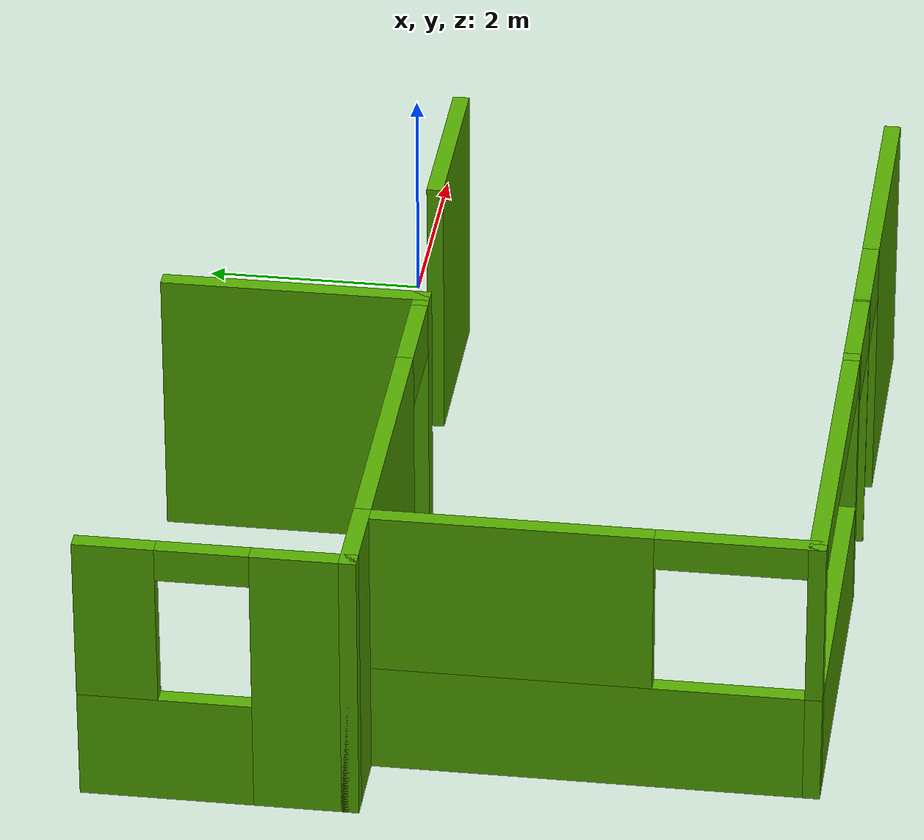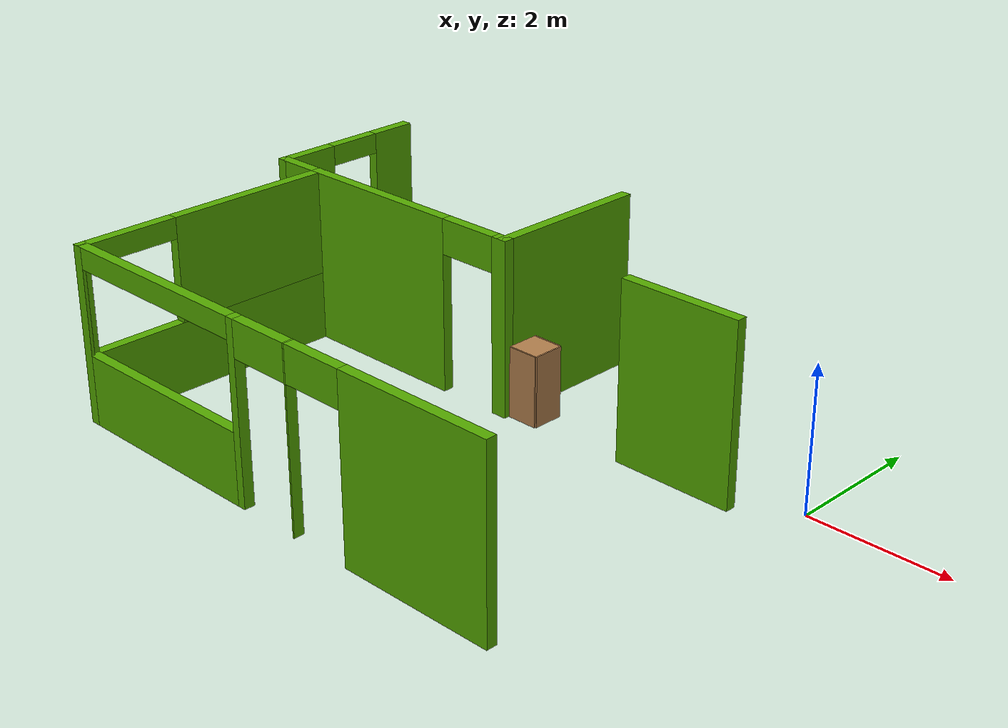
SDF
<sdf version="1.6">
 <world name="default">
  <model name="1floorHouse">
   <link name="Wall_292">
    <pose>-4.3959 -4.53994 0 0 0 -3.14158</pose>
    <visual name="Wall_292_Visual_0">
     <pose>-2.52118 0 1.25 0 -0 0</pose>
     <geometry><box><size>2.25743 0.15 2.5</size></box></geometry>
     <material>
      <script><uri>file://media/materials/scripts/gazebo.material</uri><name>Gazebo/Grey</name></script>
      <ambient>0.333333 0.666667 0 1</ambient>
      <diffuse>0.7 0.7 0.7 1</diffuse>
      <specular>0.01 0.01 0.01 1</specular>
      <emissive>0 0 0 1</emissive>
     </material>
    </visual>
    <visual name="Wall_292_Visual_1">
     <pose>-0.479853 0 1.25 0 -0 0</pose>
     <geometry><box><size>0.025221 0.15 2.5</size></box></geometry>
     <material>
      <script><uri>file://media/materials/scripts/gazebo.material</uri><name>Gazebo/Grey</name></script>
      <ambient>0.333333 0.666667 0 1</ambient>
      <diffuse>0.7 0.7 0.7 1</diffuse>
      <specular>0.01 0.01 0.01 1</specular>
      <emissive>0 0 0 1</emissive>
     </material>
    </visual>
    <visual name="Wall_292_Visual_2">
     <pose>0.492301 0 1.25 0 -0 0</pose>
     <geometry><box><size>0.119086 0.15 2.5</size></box></geometry>
     <material>
      <script><uri>file://media/materials/scripts/gazebo.material</uri><name>Gazebo/Grey</name></script>
      <ambient>0.333333 0.666667 0 1</ambient>
      <diffuse>0.7 0.7 0.7 1</diffuse>
      <specular>0.01 0.01 0.01 1</specular>
      <emissive>0 0 0 1</emissive>
     </material>
    </visual>
    <visual name="Wall_292_Visual_3">
     <pose>2.10087 0 0.5 0 -0 0</pose>
     <geometry><box><size>3.09805 0.15 1</size></box></geometry>
     <material>
      <script><uri>file://media/materials/scripts/gazebo.material</uri><name>Gazebo/Grey</name></script>
      <ambient>0.333333 0.666667 0 1</ambient>
      <diffuse>0.7 0.7 0.7 1</diffuse>
      <specular>0.01 0.01 0.01 1</specular>
      <emissive>0 0 0 1</emissive>
     </material>
    </visual>
    <visual name="Wall_292_Visual_4">
     <pose>3.60087 0 1.75 0 -0 0</pose>
     <geometry><box><size>0.098047 0.15 1.5</size></box></geometry>
     <material>
      <script><uri>file://media/materials/scripts/gazebo.material</uri><name>Gazebo/Grey</name></script>
      <ambient>0.333333 0.666667 0 1</ambient>
      <diffuse>0.7 0.7 0.7 1</diffuse>
      <specular>0.01 0.01 0.01 1</specular>
      <emissive>0 0 0 1</emissive>
     </material>
    </visual>
    <visual name="Wall_292_Visual_5">
     <pose>-0.942463 0 2.25 0 -0 0</pose>
     <geometry><box><size>0.9 0.15 0.5</size></box></geometry>
     <material>
      <script><uri>file://media/materials/scripts/gazebo.material</uri><name>Gazebo/Grey</name></script>
      <ambient>0.333333 0.666667 0 1</ambient>
      <diffuse>0.7 0.7 0.7 1</diffuse>
      <specular>0.01 0.01 0.01 1</specular>
      <emissive>0 0 0 1</emissive>
     </material>
    </visual>
    <visual name="Wall_292_Visual_6">
     <pose>-0.017242 0 2.25 0 -0 0</pose>
     <geometry><box><size>0.9 0.15 0.5</size></box></geometry>
     <material>
      <script><uri>file://media/materials/scripts/gazebo.material</uri><name>Gazebo/Grey</name></script>
      <ambient>0.333333 0.666667 0 1</ambient>
      <diffuse>0.7 0.7 0.7 1</diffuse>
      <specular>0.01 0.01 0.01 1</specular>
      <emissive>0 0 0 1</emissive>
     </material>
    </visual>
    <visual name="Wall_292_Visual_7">
     <pose>2.05184 0 2.35 0 -0 0</pose>
     <geometry><box><size>3 0.15 0.3</size></box></geometry>
     <material>
      <script><uri>file://media/materials/scripts/gazebo.material</uri><name>Gazebo/Grey</name></script>
      <ambient>0.333333 0.666667 0 1</ambient>
      <diffuse>0.7 0.7 0.7 1</diffuse>
      <specular>0.01 0.01 0.01 1</specular>
      <emissive>0 0 0 1</emissive>
     </material>
    </visual>
    <collision name="Wall_292_Collision_1">
     <pose>-0.479853 0 1.25 0 -0 0</pose>
     <geometry><box><size>0.025221 0.15 2.5</size></box></geometry>
     <surface>
      <friction>
       <ode><mu>1</mu><mu2>1</mu2><fdir1>0 0 0</fdir1><slip1>0</slip1><slip2>0</slip2></ode>
       <torsional>
        <coefficient>1</coefficient>
        <patch_radius>0</patch_radius>
        <surface_radius>0</surface_radius>
        <use_patch_radius>1</use_patch_radius>
        <ode><slip>0</slip></ode>
       </torsional>
      </friction>
      <bounce><restitution_coefficient>0</restitution_coefficient><threshold>1e+06</threshold></bounce>
      <contact>
       <collide_without_contact>0</collide_without_contact>
       <collide_without_contact_bitmask>1</collide_without_contact_bitmask>
       <collide_bitmask>1</collide_bitmask>
       <ode>
        <soft_cfm>0</soft_cfm>
        <soft_erp>0.2</soft_erp>
        <kp>1e+13</kp>
        <kd>1</kd>
        <max_vel>0.01</max_vel>
        <min_depth>0</min_depth>
       </ode>
       <bullet>
        <split_impulse>1</split_impulse>
        <split_impulse_penetration_threshold>-0.01</split_impulse_penetration_threshold>
        <soft_cfm>0</soft_cfm>
        <soft_erp>0.2</soft_erp>
        <kp>1e+13</kp>
        <kd>1</kd>
       </bullet>
      </contact>
     </surface>
    </collision>
    <collision name="Wall_292_Collision_0">
     <pose>-2.52118 0 1.25 0 -0 0</pose>
     <geometry><box><size>2.25743 0.15 2.5</size></box></geometry>
     <surface>
      <friction>
       <ode><mu>1</mu><mu2>1</mu2><fdir1>0 0 0</fdir1><slip1>0</slip1><slip2>0</slip2></ode>
       <torsional>
        <coefficient>1</coefficient>
        <patch_radius>0</patch_radius>
        <surface_radius>0</surface_radius>
        <use_patch_radius>1</use_patch_radius>
        <ode><slip>0</slip></ode>
       </torsional>
      </friction>
      <bounce><restitution_coefficient>0</restitution_coefficient><threshold>1e+06</threshold></bounce>
      <contact>
       <collide_without_contact>0</collide_without_contact>
       <collide_without_contact_bitmask>1</collide_without_contact_bitmask>
       <collide_bitmask>1</collide_bitmask>
       <ode>
        <soft_cfm>0</soft_cfm>
        <soft_erp>0.2</soft_erp>
        <kp>1e+13</kp>
        <kd>1</kd>
        <max_vel>0.01</max_vel>
        <min_depth>0</min_depth>
       </ode>
       <bullet>
        <split_impulse>1</split_impulse>
        <split_impulse_penetration_threshold>-0.01</split_impulse_penetration_threshold>
        <soft_cfm>0</soft_cfm>
        <soft_erp>0.2</soft_erp>
        <kp>1e+13</kp>
        <kd>1</kd>
       </bullet>
      </contact>
     </surface>
    </collision>
    <collision name="Wall_292_Collision_2">
     <pose>0.492301 0 1.25 0 -0 0</pose>
     <geometry><box><size>0.119086 0.15 2.5</size></box></geometry>
     <surface>
      <friction>
       <ode><mu>1</mu><mu2>1</mu2><fdir1>0 0 0</fdir1><slip1>0</slip1><slip2>0</slip2></ode>
       <torsional>
        <coefficient>1</coefficient>
        <patch_radius>0</patch_radius>
        <surface_radius>0</surface_radius>
        <use_patch_radius>1</use_patch_radius>
        <ode><slip>0</slip></ode>
       </torsional>
      </friction>
      <bounce><restitution_coefficient>0</restitution_coefficient><threshold>1e+06</threshold></bounce>
      <contact>
       <collide_without_contact>0</collide_without_contact>
       <collide_without_contact_bitmask>1</collide_without_contact_bitmask>
       <collide_bitmask>1</collide_bitmask>
       <ode>
        <soft_cfm>0</soft_cfm>
        <soft_erp>0.2</soft_erp>
        <kp>1e+13</kp>
        <kd>1</kd>
        <max_vel>0.01</max_vel>
        <min_depth>0</min_depth>
       </ode>
       <bullet>
        <split_impulse>1</split_impulse>
        <split_impulse_penetration_threshold>-0.01</split_impulse_penetration_threshold>
        <soft_cfm>0</soft_cfm>
        <soft_erp>0.2</soft_erp>
        <kp>1e+13</kp>
        <kd>1</kd>
       </bullet>
      </contact>
     </surface>
    </collision>
    <collision name="Wall_292_Collision_3">
     <pose>2.10087 0 0.5 0 -0 0</pose>
     <geometry><box><size>3.09805 0.15 1</size></box></geometry>
     <surface>
      <friction>
       <ode><mu>1</mu><mu2>1</mu2><fdir1>0 0 0</fdir1><slip1>0</slip1><slip2>0</slip2></ode>
       <torsional>
        <coefficient>1</coefficient>
        <patch_radius>0</patch_radius>
        <surface_radius>0</surface_radius>
        <use_patch_radius>1</use_patch_radius>
        <ode><slip>0</slip></ode>
       </torsional>
      </friction>
      <bounce><restitution_coefficient>0</restitution_coefficient><threshold>1e+06</threshold></bounce>
      <contact>
       <collide_without_contact>0</collide_without_contact>
       <collide_without_contact_bitmask>1</collide_without_contact_bitmask>
       <collide_bitmask>1</collide_bitmask>
       <ode>
        <soft_cfm>0</soft_cfm>
        <soft_erp>0.2</soft_erp>
        <kp>1e+13</kp>
        <kd>1</kd>
        <max_vel>0.01</max_vel>
        <min_depth>0</min_depth>
       </ode>
       <bullet>
        <split_impulse>1</split_impulse>
        <split_impulse_penetration_threshold>-0.01</split_impulse_penetration_threshold>
        <soft_cfm>0</soft_cfm>
        <soft_erp>0.2</soft_erp>
        <kp>1e+13</kp>
        <kd>1</kd>
       </bullet>
      </contact>
     </surface>
    </collision>
    <collision name="Wall_292_Collision_4">
     <pose>3.60087 0 1.75 0 -0 0</pose>
     <geometry><box><size>0.098047 0.15 1.5</size></box></geometry>
     <surface>
      <friction>
       <ode><mu>1</mu><mu2>1</mu2><fdir1>0 0 0</fdir1><slip1>0</slip1><slip2>0</slip2></ode>
       <torsional>
        <coefficient>1</coefficient>
        <patch_radius>0</patch_radius>
        <surface_radius>0</surface_radius>
        <use_patch_radius>1</use_patch_radius>
        <ode><slip>0</slip></ode>
       </torsional>
      </friction>
      <bounce><restitution_coefficient>0</restitution_coefficient><threshold>1e+06</threshold></bounce>
      <contact>
       <collide_without_contact>0</collide_without_contact>
       <collide_without_contact_bitmask>1</collide_without_contact_bitmask>
       <collide_bitmask>1</collide_bitmask>
       <ode>
        <soft_cfm>0</soft_cfm>
        <soft_erp>0.2</soft_erp>
        <kp>1e+13</kp>
        <kd>1</kd>
        <max_vel>0.01</max_vel>
        <min_depth>0</min_depth>
       </ode>
       <bullet>
        <split_impulse>1</split_impulse>
        <split_impulse_penetration_threshold>-0.01</split_impulse_penetration_threshold>
        <soft_cfm>0</soft_cfm>
        <soft_erp>0.2</soft_erp>
        <kp>1e+13</kp>
        <kd>1</kd>
       </bullet>
      </contact>
     </surface>
    </collision>
    <collision name="Wall_292_Collision_5">
     <pose>-0.942463 0 2.25 0 -0 0</pose>
     <geometry><box><size>0.9 0.15 0.5</size></box></geometry>
     <surface>
      <friction>
       <ode><mu>1</mu><mu2>1</mu2><fdir1>0 0 0</fdir1><slip1>0</slip1><slip2>0</slip2></ode>
       <torsional>
        <coefficient>1</coefficient>
        <patch_radius>0</patch_radius>
        <surface_radius>0</surface_radius>
        <use_patch_radius>1</use_patch_radius>
        <ode><slip>0</slip></ode>
       </torsional>
      </friction>
      <bounce><restitution_coefficient>0</restitution_coefficient><threshold>1e+06</threshold></bounce>
      <contact>
       <collide_without_contact>0</collide_without_contact>
       <collide_without_contact_bitmask>1</collide_without_contact_bitmask>
       <collide_bitmask>1</collide_bitmask>
       <ode>
        <soft_cfm>0</soft_cfm>
        <soft_erp>0.2</soft_erp>
        <kp>1e+13</kp>
        <kd>1</kd>
        <max_vel>0.01</max_vel>
        <min_depth>0</min_depth>
       </ode>
       <bullet>
        <split_impulse>1</split_impulse>
        <split_impulse_penetration_threshold>-0.01</split_impulse_penetration_threshold>
        <soft_cfm>0</soft_cfm>
        <soft_erp>0.2</soft_erp>
        <kp>1e+13</kp>
        <kd>1</kd>
       </bullet>
      </contact>
     </surface>
    </collision>
    <collision name="Wall_292_Collision_7">
     <pose>2.05184 0 2.35 0 -0 0</pose>
     <geometry><box><size>3 0.15 0.3</size></box></geometry>
     <surface>
      <friction>
       <ode><mu>1</mu><mu2>1</mu2><fdir1>0 0 0</fdir1><slip1>0</slip1><slip2>0</slip2></ode>
       <torsional>
        <coefficient>1</coefficient>
        <patch_radius>0</patch_radius>
        <surface_radius>0</surface_radius>
        <use_patch_radius>1</use_patch_radius>
        <ode><slip>0</slip></ode>
       </torsional>
      </friction>
      <bounce><restitution_coefficient>0</restitution_coefficient><threshold>1e+06</threshold></bounce>
      <contact>
       <collide_without_contact>0</collide_without_contact>
       <collide_without_contact_bitmask>1</collide_without_contact_bitmask>
       <collide_bitmask>1</collide_bitmask>
       <ode>
        <soft_cfm>0</soft_cfm>
        <soft_erp>0.2</soft_erp>
        <kp>1e+13</kp>
        <kd>1</kd>
        <max_vel>0.01</max_vel>
        <min_depth>0</min_depth>
       </ode>
       <bullet>
        <split_impulse>1</split_impulse>
        <split_impulse_penetration_threshold>-0.01</split_impulse_penetration_threshold>
        <soft_cfm>0</soft_cfm>
        <soft_erp>0.2</soft_erp>
        <kp>1e+13</kp>
        <kd>1</kd>
       </bullet>
      </contact>
     </surface>
    </collision>
    <collision name="Wall_292_Collision_6">
     <pose>-0.017242 0 2.25 0 -0 0</pose>
     <geometry><box><size>0.9 0.15 0.5</size></box></geometry>
     <surface>
      <friction>
       <ode><mu>1</mu><mu2>1</mu2><fdir1>0 0 0</fdir1><slip1>0</slip1><slip2>0</slip2></ode>
       <torsional>
        <coefficient>1</coefficient>
        <patch_radius>0</patch_radius>
        <surface_radius>0</surface_radius>
        <use_patch_radius>1</use_patch_radius>
        <ode><slip>0</slip></ode>
       </torsional>
      </friction>
      <bounce><restitution_coefficient>0</restitution_coefficient><threshold>1e+06</threshold></bounce>
      <contact>
       <collide_without_contact>0</collide_without_contact>
       <collide_without_contact_bitmask>1</collide_without_contact_bitmask>
       <collide_bitmask>1</collide_bitmask>
       <ode>
        <soft_cfm>0</soft_cfm>
        <soft_erp>0.2</soft_erp>
        <kp>1e+13</kp>
        <kd>1</kd>
        <max_vel>0.01</max_vel>
        <min_depth>0</min_depth>
       </ode>
       <bullet>
        <split_impulse>1</split_impulse>
        <split_impulse_penetration_threshold>-0.01</split_impulse_penetration_threshold>
        <soft_cfm>0</soft_cfm>
        <soft_erp>0.2</soft_erp>
        <kp>1e+13</kp>
        <kd>1</kd>
       </bullet>
      </contact>
     </surface>
    </collision>
   </link>
   <link name="Wall_293">
    <pose>-7.97079 -2.615 0 0 -0 1.5708</pose>
    <visual name="Wall_293_Visual_0">
     <pose>-1.97712 0 1.25 0 -0 0</pose>
     <geometry><box><size>0.045764 0.15 2.5</size></box></geometry>
     <material>
      <script><uri>file://media/materials/scripts/gazebo.material</uri><name>Gazebo/Grey</name></script>
      <ambient>0.333333 0.666667 0 1</ambient>
      <diffuse>0.7 0.7 0.7 1</diffuse>
      <specular>0.01 0.01 0.01 1</specular>
      <emissive>0 0 0 1</emissive>
     </material>
    </visual>
    <visual name="Wall_293_Visual_1">
     <pose>0.022882 0 0.5 0 -0 0</pose>
     <geometry><box><size>3.95424 0.15 1</size></box></geometry>
     <material>
      <script><uri>file://media/materials/scripts/gazebo.material</uri><name>Gazebo/Grey</name></script>
      <ambient>0.333333 0.666667 0 1</ambient>
      <diffuse>0.7 0.7 0.7 1</diffuse>
      <specular>0.01 0.01 0.01 1</specular>
      <emissive>0 0 0 1</emissive>
     </material>
    </visual>
    <visual name="Wall_293_Visual_2">
     <pose>0.722882 0 1.75 0 -0 0</pose>
     <geometry><box><size>2.55424 0.15 1.5</size></box></geometry>
     <material>
      <script><uri>file://media/materials/scripts/gazebo.material</uri><name>Gazebo/Grey</name></script>
      <ambient>0.333333 0.666667 0 1</ambient>
      <diffuse>0.7 0.7 0.7 1</diffuse>
      <specular>0.01 0.01 0.01 1</specular>
      <emissive>0 0 0 1</emissive>
     </material>
    </visual>
    <visual name="Wall_293_Visual_3">
     <pose>-1.25424 0 2.35 0 -0 0</pose>
     <geometry><box><size>1.4 0.15 0.3</size></box></geometry>
     <material>
      <script><uri>file://media/materials/scripts/gazebo.material</uri><name>Gazebo/Grey</name></script>
      <ambient>0.333333 0.666667 0 1</ambient>
      <diffuse>0.7 0.7 0.7 1</diffuse>
      <specular>0.01 0.01 0.01 1</specular>
      <emissive>0 0 0 1</emissive>
     </material>
    </visual>
    <collision name="Wall_293_Collision_0">
     <pose>-1.97712 0 1.25 0 -0 0</pose>
     <geometry><box><size>0.045764 0.15 2.5</size></box></geometry>
     <surface>
      <friction>
       <ode><mu>1</mu><mu2>1</mu2><fdir1>0 0 0</fdir1><slip1>0</slip1><slip2>0</slip2></ode>
       <torsional>
        <coefficient>1</coefficient>
        <patch_radius>0</patch_radius>
        <surface_radius>0</surface_radius>
        <use_patch_radius>1</use_patch_radius>
        <ode><slip>0</slip></ode>
       </torsional>
      </friction>
      <bounce><restitution_coefficient>0</restitution_coefficient><threshold>1e+06</threshold></bounce>
      <contact>
       <collide_without_contact>0</collide_without_contact>
       <collide_without_contact_bitmask>1</collide_without_contact_bitmask>
       <collide_bitmask>1</collide_bitmask>
       <ode>
        <soft_cfm>0</soft_cfm>
        <soft_erp>0.2</soft_erp>
        <kp>1e+13</kp>
        <kd>1</kd>
        <max_vel>0.01</max_vel>
        <min_depth>0</min_depth>
       </ode>
       <bullet>
        <split_impulse>1</split_impulse>
        <split_impulse_penetration_threshold>-0.01</split_impulse_penetration_threshold>
        <soft_cfm>0</soft_cfm>
        <soft_erp>0.2</soft_erp>
        <kp>1e+13</kp>
        <kd>1</kd>
       </bullet>
      </contact>
     </surface>
    </collision>
    <collision name="Wall_293_Collision_1">
     <pose>0.022882 0 0.5 0 -0 0</pose>
     <geometry><box><size>3.95424 0.15 1</size></box></geometry>
     <surface>
      <friction>
       <ode><mu>1</mu><mu2>1</mu2><fdir1>0 0 0</fdir1><slip1>0</slip1><slip2>0</slip2></ode>
       <torsional>
        <coefficient>1</coefficient>
        <patch_radius>0</patch_radius>
        <surface_radius>0</surface_radius>
        <use_patch_radius>1</use_patch_radius>
        <ode><slip>0</slip></ode>
       </torsional>
      </friction>
      <bounce><restitution_coefficient>0</restitution_coefficient><threshold>1e+06</threshold></bounce>
      <contact>
       <collide_without_contact>0</collide_without_contact>
       <collide_without_contact_bitmask>1</collide_without_contact_bitmask>
       <collide_bitmask>1</collide_bitmask>
       <ode>
        <soft_cfm>0</soft_cfm>
        <soft_erp>0.2</soft_erp>
        <kp>1e+13</kp>
        <kd>1</kd>
        <max_vel>0.01</max_vel>
        <min_depth>0</min_depth>
       </ode>
       <bullet>
        <split_impulse>1</split_impulse>
        <split_impulse_penetration_threshold>-0.01</split_impulse_penetration_threshold>
        <soft_cfm>0</soft_cfm>
        <soft_erp>0.2</soft_erp>
        <kp>1e+13</kp>
        <kd>1</kd>
       </bullet>
      </contact>
     </surface>
    </collision>
    <collision name="Wall_293_Collision_2">
     <pose>0.722882 0 1.75 0 -0 0</pose>
     <geometry><box><size>2.55424 0.15 1.5</size></box></geometry>
     <surface>
      <friction>
       <ode><mu>1</mu><mu2>1</mu2><fdir1>0 0 0</fdir1><slip1>0</slip1><slip2>0</slip2></ode>
       <torsional>
        <coefficient>1</coefficient>
        <patch_radius>0</patch_radius>
        <surface_radius>0</surface_radius>
        <use_patch_radius>1</use_patch_radius>
        <ode><slip>0</slip></ode>
       </torsional>
      </friction>
      <bounce><restitution_coefficient>0</restitution_coefficient><threshold>1e+06</threshold></bounce>
      <contact>
       <collide_without_contact>0</collide_without_contact>
       <collide_without_contact_bitmask>1</collide_without_contact_bitmask>
       <collide_bitmask>1</collide_bitmask>
       <ode>
        <soft_cfm>0</soft_cfm>
        <soft_erp>0.2</soft_erp>
        <kp>1e+13</kp>
        <kd>1</kd>
        <max_vel>0.01</max_vel>
        <min_depth>0</min_depth>
       </ode>
       <bullet>
        <split_impulse>1</split_impulse>
        <split_impulse_penetration_threshold>-0.01</split_impulse_penetration_threshold>
        <soft_cfm>0</soft_cfm>
        <soft_erp>0.2</soft_erp>
        <kp>1e+13</kp>
        <kd>1</kd>
       </bullet>
      </contact>
     </surface>
    </collision>
    <collision name="Wall_293_Collision_3">
     <pose>-1.25424 0 2.35 0 -0 0</pose>
     <geometry><box><size>1.4 0.15 0.3</size></box></geometry>
     <surface>
      <friction>
       <ode><mu>1</mu><mu2>1</mu2><fdir1>0 0 0</fdir1><slip1>0</slip1><slip2>0</slip2></ode>
       <torsional>
        <coefficient>1</coefficient>
        <patch_radius>0</patch_radius>
        <surface_radius>0</surface_radius>
        <use_patch_radius>1</use_patch_radius>
        <ode><slip>0</slip></ode>
       </torsional>
      </friction>
      <bounce><restitution_coefficient>0</restitution_coefficient><threshold>1e+06</threshold></bounce>
      <contact>
       <collide_without_contact>0</collide_without_contact>
       <collide_without_contact_bitmask>1</collide_without_contact_bitmask>
       <collide_bitmask>1</collide_bitmask>
       <ode>
        <soft_cfm>0</soft_cfm>
        <soft_erp>0.2</soft_erp>
        <kp>1e+13</kp>
        <kd>1</kd>
        <max_vel>0.01</max_vel>
        <min_depth>0</min_depth>
       </ode>
       <bullet>
        <split_impulse>1</split_impulse>
        <split_impulse_penetration_threshold>-0.01</split_impulse_penetration_threshold>
        <soft_cfm>0</soft_cfm>
        <soft_erp>0.2</soft_erp>
        <kp>1e+13</kp>
        <kd>1</kd>
       </bullet>
      </contact>
     </surface>
    </collision>
   </link>
   <link name="Wall_294">
    <pose>-8.3305 -0.690004 0 0 -0 3.14159</pose>
    <visual name="Wall_294_Visual">
     <pose>0 0 1.25 0 -0 0</pose>
     <geometry><box><size>0.86941 0.15 2.5</size></box></geometry>
     <material>
      <script><uri>file://media/materials/scripts/gazebo.material</uri><name>Gazebo/Grey</name></script>
      <ambient>0.333333 0.666667 0 1</ambient>
      <diffuse>0.7 0.7 0.7 1</diffuse>
      <specular>0.01 0.01 0.01 1</specular>
      <emissive>0 0 0 1</emissive>
     </material>
    </visual>
    <collision name="Wall_294_Collision">
     <pose>0 0 1.25 0 -0 0</pose>
     <geometry><box><size>0.86941 0.15 2.5</size></box></geometry>
     <surface>
      <friction>
       <ode><mu>1</mu><mu2>1</mu2><fdir1>0 0 0</fdir1><slip1>0</slip1><slip2>0</slip2></ode>
       <torsional>
        <coefficient>1</coefficient>
        <patch_radius>0</patch_radius>
        <surface_radius>0</surface_radius>
        <use_patch_radius>1</use_patch_radius>
        <ode><slip>0</slip></ode>
       </torsional>
      </friction>
      <bounce><restitution_coefficient>0</restitution_coefficient><threshold>1e+06</threshold></bounce>
      <contact>
       <collide_without_contact>0</collide_without_contact>
       <collide_without_contact_bitmask>1</collide_without_contact_bitmask>
       <collide_bitmask>1</collide_bitmask>
       <ode>
        <soft_cfm>0</soft_cfm>
        <soft_erp>0.2</soft_erp>
        <kp>1e+13</kp>
        <kd>1</kd>
        <max_vel>0.01</max_vel>
        <min_depth>0</min_depth>
       </ode>
       <bullet>
        <split_impulse>1</split_impulse>
        <split_impulse_penetration_threshold>-0.01</split_impulse_penetration_threshold>
        <soft_cfm>0</soft_cfm>
        <soft_erp>0.2</soft_erp>
        <kp>1e+13</kp>
        <kd>1</kd>
       </bullet>
      </contact>
     </surface>
    </collision>
   </link>
   <link name="Wall_295">
    <pose>-8.69021 0.434996 0 0 -0 1.5708</pose>
    <visual name="Wall_295_Visual_0">
     <pose>-0.748437 0 1.25 0 -0 0</pose>
     <geometry><box><size>0.903127 0.15 2.5</size></box></geometry>
     <material>
      <script><uri>file://media/materials/scripts/gazebo.material</uri><name>Gazebo/Grey</name></script>
      <ambient>0.333333 0.666667 0 1</ambient>
      <diffuse>0.7 0.7 0.7 1</diffuse>
      <specular>0.01 0.01 0.01 1</specular>
      <emissive>0 0 0 1</emissive>
     </material>
    </visual>
    <visual name="Wall_295_Visual_1">
     <pose>0.451563 0 0.5 0 -0 0</pose>
     <geometry><box><size>1.49687 0.15 1</size></box></geometry>
     <material>
      <script><uri>file://media/materials/scripts/gazebo.material</uri><name>Gazebo/Grey</name></script>
      <ambient>0.333333 0.666667 0 1</ambient>
      <diffuse>0.7 0.7 0.7 1</diffuse>
      <specular>0.01 0.01 0.01 1</specular>
      <emissive>0 0 0 1</emissive>
     </material>
    </visual>
    <visual name="Wall_295_Visual_2">
     <pose>0.851563 0 1.75 0 -0 0</pose>
     <geometry><box><size>0.696873 0.15 1.5</size></box></geometry>
     <material>
      <script><uri>file://media/materials/scripts/gazebo.material</uri><name>Gazebo/Grey</name></script>
      <ambient>0.333333 0.666667 0 1</ambient>
      <diffuse>0.7 0.7 0.7 1</diffuse>
      <specular>0.01 0.01 0.01 1</specular>
      <emissive>0 0 0 1</emissive>
     </material>
    </visual>
    <visual name="Wall_295_Visual_3">
     <pose>0.103127 0 2.35 0 -0 0</pose>
     <geometry><box><size>0.8 0.15 0.3</size></box></geometry>
     <material>
      <script><uri>file://media/materials/scripts/gazebo.material</uri><name>Gazebo/Grey</name></script>
      <ambient>0.333333 0.666667 0 1</ambient>
      <diffuse>0.7 0.7 0.7 1</diffuse>
      <specular>0.01 0.01 0.01 1</specular>
      <emissive>0 0 0 1</emissive>
     </material>
    </visual>
    <collision name="Wall_295_Collision_0">
     <pose>-0.748437 0 1.25 0 -0 0</pose>
     <geometry><box><size>0.903127 0.15 2.5</size></box></geometry>
     <surface>
      <friction>
       <ode><mu>1</mu><mu2>1</mu2><fdir1>0 0 0</fdir1><slip1>0</slip1><slip2>0</slip2></ode>
       <torsional>
        <coefficient>1</coefficient>
        <patch_radius>0</patch_radius>
        <surface_radius>0</surface_radius>
        <use_patch_radius>1</use_patch_radius>
        <ode><slip>0</slip></ode>
       </torsional>
      </friction>
      <bounce><restitution_coefficient>0</restitution_coefficient><threshold>1e+06</threshold></bounce>
      <contact>
       <collide_without_contact>0</collide_without_contact>
       <collide_without_contact_bitmask>1</collide_without_contact_bitmask>
       <collide_bitmask>1</collide_bitmask>
       <ode>
        <soft_cfm>0</soft_cfm>
        <soft_erp>0.2</soft_erp>
        <kp>1e+13</kp>
        <kd>1</kd>
        <max_vel>0.01</max_vel>
        <min_depth>0</min_depth>
       </ode>
       <bullet>
        <split_impulse>1</split_impulse>
        <split_impulse_penetration_threshold>-0.01</split_impulse_penetration_threshold>
        <soft_cfm>0</soft_cfm>
        <soft_erp>0.2</soft_erp>
        <kp>1e+13</kp>
        <kd>1</kd>
       </bullet>
      </contact>
     </surface>
    </collision>
    <collision name="Wall_295_Collision_1">
     <pose>0.451563 0 0.5 0 -0 0</pose>
     <geometry><box><size>1.49687 0.15 1</size></box></geometry>
     <surface>
      <friction>
       <ode><mu>1</mu><mu2>1</mu2><fdir1>0 0 0</fdir1><slip1>0</slip1><slip2>0</slip2></ode>
       <torsional>
        <coefficient>1</coefficient>
        <patch_radius>0</patch_radius>
        <surface_radius>0</surface_radius>
        <use_patch_radius>1</use_patch_radius>
        <ode><slip>0</slip></ode>
       </torsional>
      </friction>
      <bounce><restitution_coefficient>0</restitution_coefficient><threshold>1e+06</threshold></bounce>
      <contact>
       <collide_without_contact>0</collide_without_contact>
       <collide_without_contact_bitmask>1</collide_without_contact_bitmask>
       <collide_bitmask>1</collide_bitmask>
       <ode>
        <soft_cfm>0</soft_cfm>
        <soft_erp>0.2</soft_erp>
        <kp>1e+13</kp>
        <kd>1</kd>
        <max_vel>0.01</max_vel>
        <min_depth>0</min_depth>
       </ode>
       <bullet>
        <split_impulse>1</split_impulse>
        <split_impulse_penetration_threshold>-0.01</split_impulse_penetration_threshold>
        <soft_cfm>0</soft_cfm>
        <soft_erp>0.2</soft_erp>
        <kp>1e+13</kp>
        <kd>1</kd>
       </bullet>
      </contact>
     </surface>
    </collision>
    <collision name="Wall_295_Collision_2">
     <pose>0.851563 0 1.75 0 -0 0</pose>
     <geometry><box><size>0.696873 0.15 1.5</size></box></geometry>
     <surface>
      <friction>
       <ode><mu>1</mu><mu2>1</mu2><fdir1>0 0 0</fdir1><slip1>0</slip1><slip2>0</slip2></ode>
       <torsional>
        <coefficient>1</coefficient>
        <patch_radius>0</patch_radius>
        <surface_radius>0</surface_radius>
        <use_patch_radius>1</use_patch_radius>
        <ode><slip>0</slip></ode>
       </torsional>
      </friction>
      <bounce><restitution_coefficient>0</restitution_coefficient><threshold>1e+06</threshold></bounce>
      <contact>
       <collide_without_contact>0</collide_without_contact>
       <collide_without_contact_bitmask>1</collide_without_contact_bitmask>
       <collide_bitmask>1</collide_bitmask>
       <ode>
        <soft_cfm>0</soft_cfm>
        <soft_erp>0.2</soft_erp>
        <kp>1e+13</kp>
        <kd>1</kd>
        <max_vel>0.01</max_vel>
        <min_depth>0</min_depth>
       </ode>
       <bullet>
        <split_impulse>1</split_impulse>
        <split_impulse_penetration_threshold>-0.01</split_impulse_penetration_threshold>
        <soft_cfm>0</soft_cfm>
        <soft_erp>0.2</soft_erp>
        <kp>1e+13</kp>
        <kd>1</kd>
       </bullet>
      </contact>
     </surface>
    </collision>
    <collision name="Wall_295_Collision_3">
     <pose>0.103127 0 2.35 0 -0 0</pose>
     <geometry><box><size>0.8 0.15 0.3</size></box></geometry>
     <surface>
      <friction>
       <ode><mu>1</mu><mu2>1</mu2><fdir1>0 0 0</fdir1><slip1>0</slip1><slip2>0</slip2></ode>
       <torsional>
        <coefficient>1</coefficient>
        <patch_radius>0</patch_radius>
        <surface_radius>0</surface_radius>
        <use_patch_radius>1</use_patch_radius>
        <ode><slip>0</slip></ode>
       </torsional>
      </friction>
      <bounce><restitution_coefficient>0</restitution_coefficient><threshold>1e+06</threshold></bounce>
      <contact>
       <collide_without_contact>0</collide_without_contact>
       <collide_without_contact_bitmask>1</collide_without_contact_bitmask>
       <collide_bitmask>1</collide_bitmask>
       <ode>
        <soft_cfm>0</soft_cfm>
        <soft_erp>0.2</soft_erp>
        <kp>1e+13</kp>
        <kd>1</kd>
        <max_vel>0.01</max_vel>
        <min_depth>0</min_depth>
       </ode>
       <bullet>
        <split_impulse>1</split_impulse>
        <split_impulse_penetration_threshold>-0.01</split_impulse_penetration_threshold>
        <soft_cfm>0</soft_cfm>
        <soft_erp>0.2</soft_erp>
        <kp>1e+13</kp>
        <kd>1</kd>
       </bullet>
      </contact>
     </surface>
    </collision>
   </link>
   <link name="Wall_297">
    <pose>-4.34021 0.434996 0 0 0 -1.5708</pose>
    <visual name="Wall_297_Visual">
     <pose>0 0 1.25 0 -0 0</pose>
     <geometry><box><size>2.4 0.15 2.5</size></box></geometry>
     <material>
      <script><uri>file://media/materials/scripts/gazebo.material</uri><name>Gazebo/Grey</name></script>
      <ambient>0.333333 0.666667 0 1</ambient>
      <diffuse>0.7 0.7 0.7 1</diffuse>
      <specular>0.01 0.01 0.01 1</specular>
      <emissive>0 0 0 1</emissive>
     </material>
    </visual>
    <collision name="Wall_297_Collision">
     <pose>0 0 1.25 0 -0 0</pose>
     <geometry><box><size>2.4 0.15 2.5</size></box></geometry>
     <surface>
      <friction>
       <ode><mu>1</mu><mu2>1</mu2><fdir1>0 0 0</fdir1><slip1>0</slip1><slip2>0</slip2></ode>
       <torsional>
        <coefficient>1</coefficient>
        <patch_radius>0</patch_radius>
        <surface_radius>0</surface_radius>
        <use_patch_radius>1</use_patch_radius>
        <ode><slip>0</slip></ode>
       </torsional>
      </friction>
      <bounce><restitution_coefficient>0</restitution_coefficient><threshold>1e+06</threshold></bounce>
      <contact>
       <collide_without_contact>0</collide_without_contact>
       <collide_without_contact_bitmask>1</collide_without_contact_bitmask>
       <collide_bitmask>1</collide_bitmask>
       <ode>
        <soft_cfm>0</soft_cfm>
        <soft_erp>0.2</soft_erp>
        <kp>1e+13</kp>
        <kd>1</kd>
        <max_vel>0.01</max_vel>
        <min_depth>0</min_depth>
       </ode>
       <bullet>
        <split_impulse>1</split_impulse>
        <split_impulse_penetration_threshold>-0.01</split_impulse_penetration_threshold>
        <soft_cfm>0</soft_cfm>
        <soft_erp>0.2</soft_erp>
        <kp>1e+13</kp>
        <kd>1</kd>
       </bullet>
      </contact>
     </surface>
    </collision>
   </link>
   <link name="Wall_298">
    <pose>-6.1555 -0.690004 0 0 -0 3.14159</pose>
    <visual name="Wall_298_Visual_0">
     <pose>-1.77022 0 1.25 0 -0 0</pose>
     <geometry><box><size>0.240159 0.15 2.5</size></box></geometry>
     <material>
      <script><uri>file://media/materials/scripts/gazebo.material</uri><name>Gazebo/Grey</name></script>
      <ambient>0.333333 0.666667 0 1</ambient>
      <diffuse>0.7 0.7 0.7 1</diffuse>
      <specular>0.01 0.01 0.01 1</specular>
      <emissive>0 0 0 1</emissive>
     </material>
    </visual>
    <visual name="Wall_298_Visual_1">
     <pose>0.570079 0 1.25 0 -0 0</pose>
     <geometry><box><size>2.64043 0.15 2.5</size></box></geometry>
     <material>
      <script><uri>file://media/materials/scripts/gazebo.material</uri><name>Gazebo/Grey</name></script>
      <ambient>0.333333 0.666667 0 1</ambient>
      <diffuse>0.7 0.7 0.7 1</diffuse>
      <specular>0.01 0.01 0.01 1</specular>
      <emissive>0 0 0 1</emissive>
     </material>
    </visual>
    <visual name="Wall_298_Visual_2">
     <pose>-1.20014 0 2.25 0 -0 0</pose>
     <geometry><box><size>0.9 0.15 0.5</size></box></geometry>
     <material>
      <script><uri>file://media/materials/scripts/gazebo.material</uri><name>Gazebo/Grey</name></script>
      <ambient>0.333333 0.666667 0 1</ambient>
      <diffuse>0.7 0.7 0.7 1</diffuse>
      <specular>0.01 0.01 0.01 1</specular>
      <emissive>0 0 0 1</emissive>
     </material>
    </visual>
    <collision name="Wall_298_Collision_0">
     <pose>-1.77022 0 1.25 0 -0 0</pose>
     <geometry><box><size>0.240159 0.15 2.5</size></box></geometry>
     <surface>
      <friction>
       <ode><mu>1</mu><mu2>1</mu2><fdir1>0 0 0</fdir1><slip1>0</slip1><slip2>0</slip2></ode>
       <torsional>
        <coefficient>1</coefficient>
        <patch_radius>0</patch_radius>
        <surface_radius>0</surface_radius>
        <use_patch_radius>1</use_patch_radius>
        <ode><slip>0</slip></ode>
       </torsional>
      </friction>
      <bounce><restitution_coefficient>0</restitution_coefficient><threshold>1e+06</threshold></bounce>
      <contact>
       <collide_without_contact>0</collide_without_contact>
       <collide_without_contact_bitmask>1</collide_without_contact_bitmask>
       <collide_bitmask>1</collide_bitmask>
       <ode>
        <soft_cfm>0</soft_cfm>
        <soft_erp>0.2</soft_erp>
        <kp>1e+13</kp>
        <kd>1</kd>
        <max_vel>0.01</max_vel>
        <min_depth>0</min_depth>
       </ode>
       <bullet>
        <split_impulse>1</split_impulse>
        <split_impulse_penetration_threshold>-0.01</split_impulse_penetration_threshold>
        <soft_cfm>0</soft_cfm>
        <soft_erp>0.2</soft_erp>
        <kp>1e+13</kp>
        <kd>1</kd>
       </bullet>
      </contact>
     </surface>
    </collision>
    <collision name="Wall_298_Collision_1">
     <pose>0.570079 0 1.25 0 -0 0</pose>
     <geometry><box><size>2.64043 0.15 2.5</size></box></geometry>
     <surface>
      <friction>
       <ode><mu>1</mu><mu2>1</mu2><fdir1>0 0 0</fdir1><slip1>0</slip1><slip2>0</slip2></ode>
       <torsional>
        <coefficient>1</coefficient>
        <patch_radius>0</patch_radius>
        <surface_radius>0</surface_radius>
        <use_patch_radius>1</use_patch_radius>
        <ode><slip>0</slip></ode>
       </torsional>
      </friction>
      <bounce><restitution_coefficient>0</restitution_coefficient><threshold>1e+06</threshold></bounce>
      <contact>
       <collide_without_contact>0</collide_without_contact>
       <collide_without_contact_bitmask>1</collide_without_contact_bitmask>
       <collide_bitmask>1</collide_bitmask>
       <ode>
        <soft_cfm>0</soft_cfm>
        <soft_erp>0.2</soft_erp>
        <kp>1e+13</kp>
        <kd>1</kd>
        <max_vel>0.01</max_vel>
        <min_depth>0</min_depth>
       </ode>
       <bullet>
        <split_impulse>1</split_impulse>
        <split_impulse_penetration_threshold>-0.01</split_impulse_penetration_threshold>
        <soft_cfm>0</soft_cfm>
        <soft_erp>0.2</soft_erp>
        <kp>1e+13</kp>
        <kd>1</kd>
       </bullet>
      </contact>
     </surface>
    </collision>
    <collision name="Wall_298_Collision_2">
     <pose>-1.20014 0 2.25 0 -0 0</pose>
     <geometry><box><size>0.9 0.15 0.5</size></box></geometry>
     <surface>
      <friction>
       <ode><mu>1</mu><mu2>1</mu2><fdir1>0 0 0</fdir1><slip1>0</slip1><slip2>0</slip2></ode>
       <torsional>
        <coefficient>1</coefficient>
        <patch_radius>0</patch_radius>
        <surface_radius>0</surface_radius>
        <use_patch_radius>1</use_patch_radius>
        <ode><slip>0</slip></ode>
       </torsional>
      </friction>
      <bounce><restitution_coefficient>0</restitution_coefficient><threshold>1e+06</threshold></bounce>
      <contact>
       <collide_without_contact>0</collide_without_contact>
       <collide_without_contact_bitmask>1</collide_without_contact_bitmask>
       <collide_bitmask>1</collide_bitmask>
       <ode>
        <soft_cfm>0</soft_cfm>
        <soft_erp>0.2</soft_erp>
        <kp>1e+13</kp>
        <kd>1</kd>
        <max_vel>0.01</max_vel>
        <min_depth>0</min_depth>
       </ode>
       <bullet>
        <split_impulse>1</split_impulse>
        <split_impulse_penetration_threshold>-0.01</split_impulse_penetration_threshold>
        <soft_cfm>0</soft_cfm>
        <soft_erp>0.2</soft_erp>
        <kp>1e+13</kp>
        <kd>1</kd>
       </bullet>
      </contact>
     </surface>
    </collision>
   </link>
   <link name="Wall_301">
    <pose>-1.5898 -0.540004 0 0 -0 3.14159</pose>
    <visual name="Wall_301_Visual">
     <pose>0 0 1.25 0 -0 0</pose>
     <geometry><box><size>1.75 0.15 2.5</size></box></geometry>
     <material>
      <script><uri>file://media/materials/scripts/gazebo.material</uri><name>Gazebo/Grey</name></script>
      <ambient>0.333333 0.666667 0 1</ambient>
      <diffuse>0.7 0.7 0.7 1</diffuse>
      <specular>0.01 0.01 0.01 1</specular>
      <emissive>0 0 0 1</emissive>
     </material>
    </visual>
    <collision name="Wall_301_Collision">
     <pose>0 0 1.25 0 -0 0</pose>
     <geometry><box><size>1.75 0.15 2.5</size></box></geometry>
     <surface>
      <friction>
       <ode><mu>1</mu><mu2>1</mu2><fdir1>0 0 0</fdir1><slip1>0</slip1><slip2>0</slip2></ode>
       <torsional>
        <coefficient>1</coefficient>
        <patch_radius>0</patch_radius>
        <surface_radius>0</surface_radius>
        <use_patch_radius>1</use_patch_radius>
        <ode><slip>0</slip></ode>
       </torsional>
      </friction>
      <bounce><restitution_coefficient>0</restitution_coefficient><threshold>1e+06</threshold></bounce>
      <contact>
       <collide_without_contact>0</collide_without_contact>
       <collide_without_contact_bitmask>1</collide_without_contact_bitmask>
       <collide_bitmask>1</collide_bitmask>
       <ode>
        <soft_cfm>0</soft_cfm>
        <soft_erp>0.2</soft_erp>
        <kp>1e+13</kp>
        <kd>1</kd>
        <max_vel>0.01</max_vel>
        <min_depth>0</min_depth>
       </ode>
       <bullet>
        <split_impulse>1</split_impulse>
        <split_impulse_penetration_threshold>-0.01</split_impulse_penetration_threshold>
        <soft_cfm>0</soft_cfm>
        <soft_erp>0.2</soft_erp>
        <kp>1e+13</kp>
        <kd>1</kd>
       </bullet>
      </contact>
     </surface>
    </collision>
   </link>
   <static>1</static>
   <pose>-0.00883 0.02443 0 0 -0 0</pose>
  </model>
  <model name="ground_plane">
   <static>1</static>
   <link name="link">
    <collision name="collision">
     <geometry><plane><normal>0 0 1</normal><size>100 100</size></plane></geometry>
     <surface>
      <friction><ode><mu>0.75</mu><mu2>0.75</mu2><slip1>0.15</slip1><slip2>0.15</slip2></ode></friction>
     </surface>
    </collision>
   </link>
   <pose>4.38822 -7.98886 0 0 -0 0</pose>
  </model>
  <model name="cabinet">
   <static>1</static>
   <link name="cabinet_bottom_plate">
    <inertial>
     <pose>0 0 -1 0 -0 0</pose>
     <inertia><ixx>2.05</ixx><ixy>0</ixy><ixz>0</ixz><iyy>2.05</iyy><iyz>0</iyz><izz>2.05</izz></inertia>
     <mass>25</mass>
    </inertial>
    <collision name="cabinet_bottom_plate_geom">
     <pose>0 0 0.01 0 -0 0</pose>
     <geometry><box><size>0.45 0.45 0.02</size></box></geometry>
    </collision>
    <visual name="cabinet_bottom_plate_geom_visual">
     <pose>0 0 0.01 0 -0 0</pose>
     <geometry><box><size>0.45 0.45 0.02</size></box></geometry>
     <material>
      <script><uri>file://media/materials/scripts/gazebo.material</uri><name>Gazebo/Wood</name></script>
     </material>
    </visual>
    <collision name="cabinet_bottom_plate_geom_cabinet_back_plate">
     <pose>0.235 0 0.51 0 -0 0</pose>
     <geometry><box><size>0.02 0.45 1.02</size></box></geometry>
    </collision>
    <visual name="cabinet_bottom_plate_geom_cabinet_back_plate_visual">
     <pose>0.235 0 0.51 0 -0 0</pose>
     <geometry><box><size>0.02 0.45 1.02</size></box></geometry>
     <material>
      <script><uri>file://media/materials/scripts/gazebo.material</uri><name>Gazebo/Wood</name></script>
     </material>
    </visual>
    <collision name="cabinet_bottom_plate_geom_cabinet_left_plate">
     <pose>0 0.235 0.51 0 -0 0</pose>
     <geometry><box><size>0.45 0.02 1.02</size></box></geometry>
    </collision>
    <visual name="cabinet_bottom_plate_geom_cabinet_left_plate_visual">
     <pose>0 0.235 0.51 0 -0 0</pose>
     <geometry><box><size>0.45 0.02 1.02</size></box></geometry>
     <material>
      <script><uri>file://media/materials/scripts/gazebo.material</uri><name>Gazebo/Wood</name></script>
     </material>
    </visual>
    <collision name="cabinet_bottom_plate_geom_cabinet_middle_plate">
     <pose>0 0 0.51 0 -0 0</pose>
     <geometry><box><size>0.45 0.45 0.02</size></box></geometry>
    </collision>
    <visual name="cabinet_bottom_plate_geom_cabinet_middle_plate_visual">
     <pose>0 0 0.51 0 -0 0</pose>
     <geometry><box><size>0.45 0.45 0.02</size></box></geometry>
     <material>
      <script><uri>file://media/materials/scripts/gazebo.material</uri><name>Gazebo/Wood</name></script>
     </material>
    </visual>
    <collision name="cabinet_bottom_plate_geom_cabinet_right_plate">
     <pose>0 -0.235 0.51 0 -0 0</pose>
     <geometry><box><size>0.45 0.02 1.02</size></box></geometry>
    </collision>
    <visual name="cabinet_bottom_plate_geom_cabinet_right_plate_visual">
     <pose>0 -0.235 0.51 0 -0 0</pose>
     <geometry><box><size>0.45 0.02 1.02</size></box></geometry>
     <material>
      <script><uri>file://media/materials/scripts/gazebo.material</uri><name>Gazebo/Wood</name></script>
     </material>
    </visual>
    <collision name="cabinet_bottom_plate_geom_cabinet_top_plate">
     <pose>0 0 1.01 0 -0 0</pose>
     <geometry><box><size>0.45 0.45 0.02</size></box></geometry>
    </collision>
    <visual name="cabinet_bottom_plate_geom_cabinet_top_plate_visual">
     <pose>0 0 1.01 0 -0 0</pose>
     <geometry><box><size>0.45 0.45 0.02</size></box></geometry>
     <material>
      <script><uri>file://media/materials/scripts/gazebo.material</uri><name>Gazebo/Wood</name></script>
     </material>
    </visual>
   </link>
   <pose>-4.0412 -0.416983 0 0 -0 0</pose>
  </model>
 </world>
</sdf>
